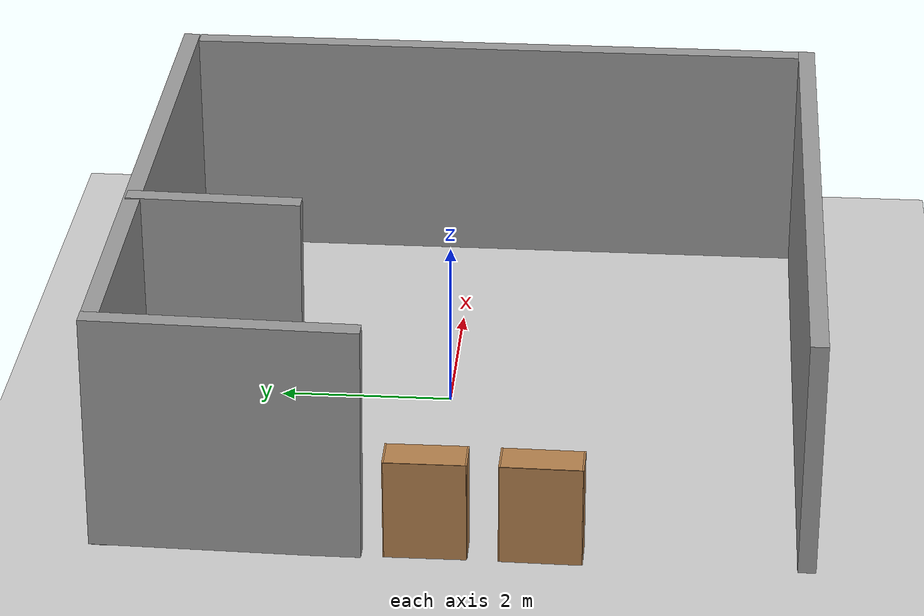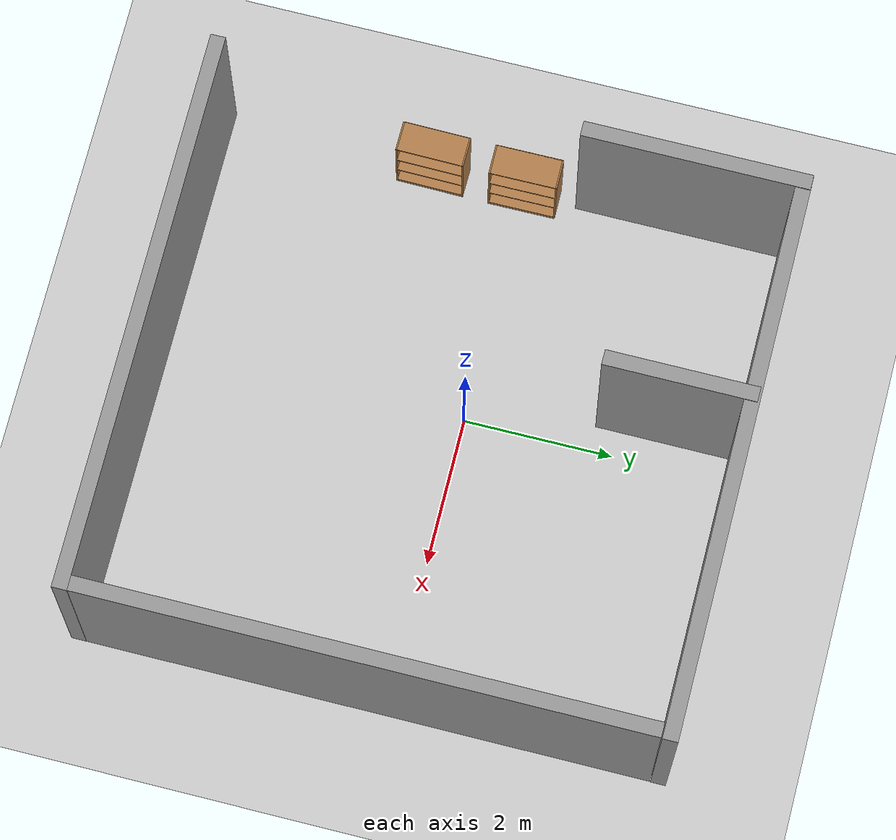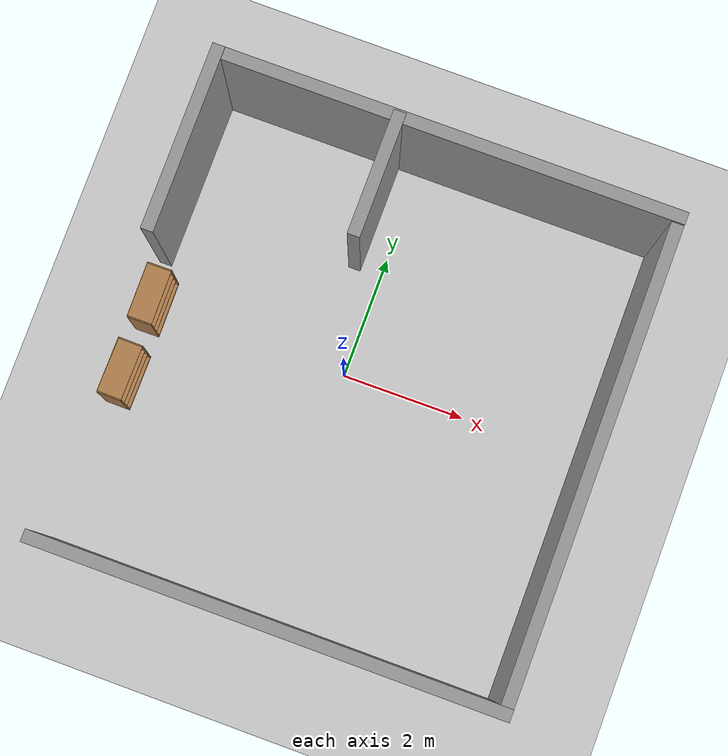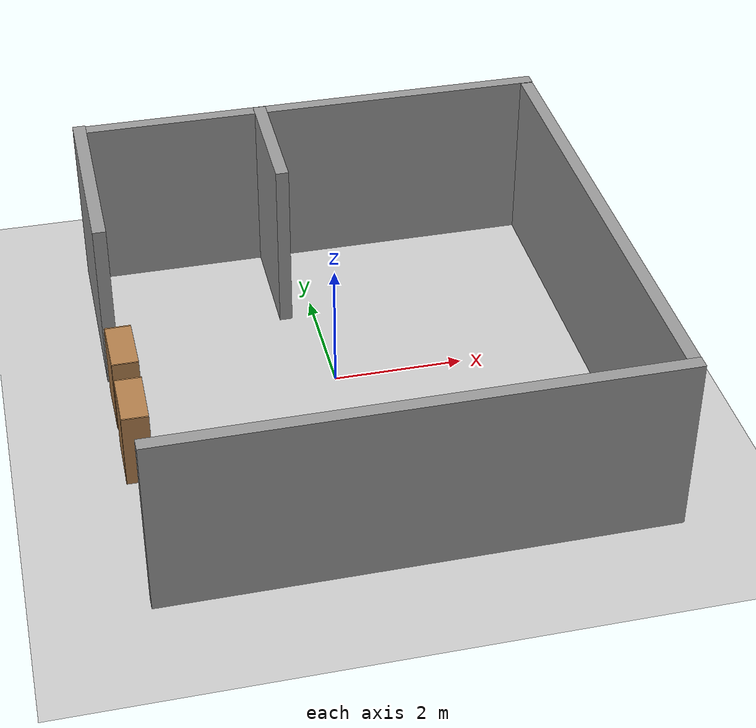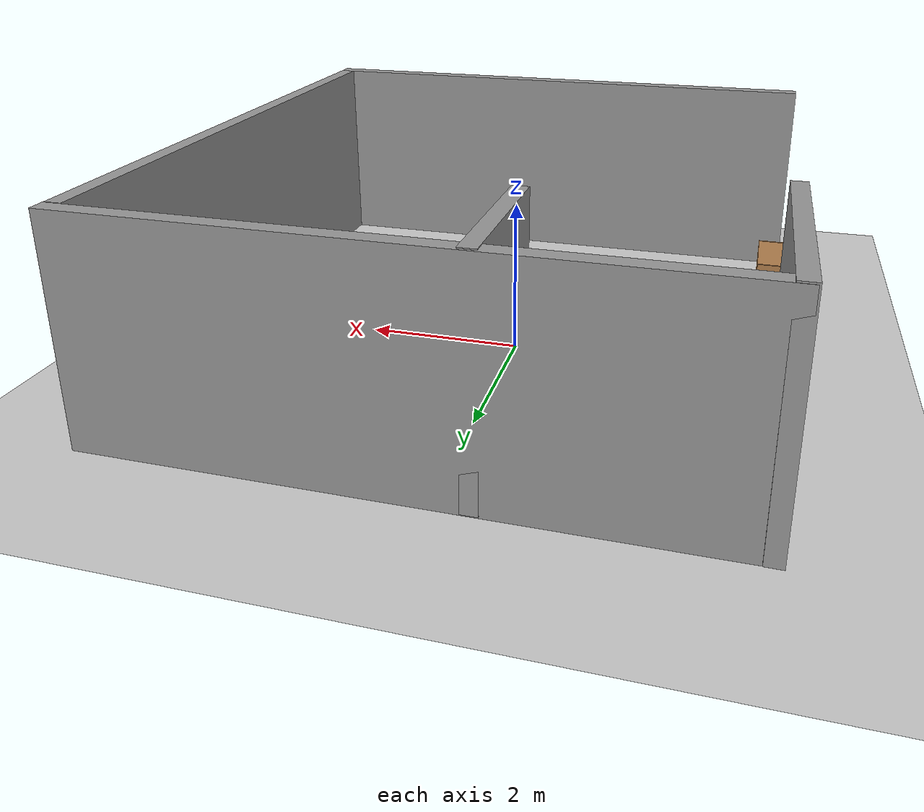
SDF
<sdf version="1.6">
 <world name="default">
  <light name="sun" type="directional">
   <pose>0 0 15 0 -0 0</pose>
   <diffuse>0.8 0.8 0.8 1</diffuse>
   <specular>0.2 0.2 0.2 1</specular>
   <attenuation>
    <range>1000</range>
    <constant>0.9</constant>
    <linear>0.01</linear>
    <quadratic>0.001</quadratic>
   </attenuation>
   <direction>-0.5 0.1 -0.9</direction>
  </light>
  <model name="ground_plane">
   <static>1</static>
   <link name="link">
    <collision name="collision">
     <geometry><plane><normal>0 0 1</normal><size>100 100</size></plane></geometry>
     <surface><friction><ode><mu>100</mu><mu2>50</mu2></ode></friction></surface>
    </collision>
    <visual name="visual">
     <transparency>1</transparency>
     <cast_shadows>0</cast_shadows>
     <geometry><plane><normal>0 0 1</normal><size>100 100</size></plane></geometry>
     <material>
      <script><uri>file://media/materials/scripts/gazebo.material</uri><name>Gazebo/Grey</name></script>
     </material>
    </visual>
   </link>
  </model>
  <gravity>0 0 -9.8</gravity>
  <magnetic_field>6e-06 2.3e-05 -4.2e-05</magnetic_field>
  <atmosphere type="adiabatic"/>
  <physics name="default_physics" default="0" type="ode">
   <max_step_size>0.001</max_step_size>
   <real_time_factor>1</real_time_factor>
   <real_time_update_rate>1000</real_time_update_rate>
  </physics>
  <scene><ambient>0.4 0.4 0.4 1</ambient><background>0.7 0.7 0.7 1</background><shadows>1</shadows></scene>
  <spherical_coordinates>
   <surface_model>EARTH_WGS84</surface_model>
   <latitude_deg>0</latitude_deg>
   <longitude_deg>0</longitude_deg>
   <elevation>0</elevation>
   <heading_deg>0</heading_deg>
  </spherical_coordinates>
  <model name="grey_wall">
   <static>1</static>
   <link name="link">
    <pose>0 0 1.4 0 -0 0</pose>
    <collision name="collision"><geometry><box><size>7.5 0.2 2.8</size></box></geometry></collision>
    <visual name="visual">
     <cast_shadows>0</cast_shadows>
     <geometry><box><size>7.5 0.2 2.8</size></box></geometry>
     <material>
      <script>
       <uri>model://grey_wall/materials/scripts</uri>
       <uri>model://grey_wall/materials/textures</uri>
       <name>vrc/grey_wall</name>
      </script>
     </material>
    </visual>
   </link>
   <pose>0.335627 -4.12565 0 0 -0 0</pose>
  </model>
  <model name="grey_wall_0">
   <static>1</static>
   <link name="link">
    <pose>0 0 1.4 0 -0 0</pose>
    <collision name="collision"><geometry><box><size>7.5 0.2 2.8</size></box></geometry></collision>
    <visual name="visual">
     <cast_shadows>0</cast_shadows>
     <geometry><box><size>7.5 0.2 2.8</size></box></geometry>
     <material>
      <script>
       <uri>model://grey_wall/materials/scripts</uri>
       <uri>model://grey_wall/materials/textures</uri>
       <name>vrc/grey_wall</name>
      </script>
     </material>
    </visual>
   </link>
   <pose>0.337599 3.586 0 0 -0 0</pose>
  </model>
  <model name="grey_wall_1">
   <static>1</static>
   <link name="link">
    <pose>0 0 1.4 0 -0 0</pose>
    <collision name="collision"><geometry><box><size>7.5 0.2 2.8</size></box></geometry></collision>
    <visual name="visual">
     <cast_shadows>0</cast_shadows>
     <geometry><box><size>7.5 0.2 2.8</size></box></geometry>
     <material>
      <script>
       <uri>model://grey_wall/materials/scripts</uri>
       <uri>model://grey_wall/materials/textures</uri>
       <name>vrc/grey_wall</name>
      </script>
     </material>
    </visual>
   </link>
   <pose>3.98261 -0.277309 0 0 -0 1.5708</pose>
  </model>
  <model name="bookshelf">
   <static>1</static>
   <link name="link">
    <inertial><mass>1</mass></inertial>
    <collision name="back">
     <pose>0 0.005 0.6 0 -0 0</pose>
     <geometry><box><size>0.9 0.01 1.2</size></box></geometry>
    </collision>
    <visual name="visual1">
     <pose>0 0.005 0.6 0 -0 0</pose>
     <geometry><box><size>0.9 0.01 1.2</size></box></geometry>
     <material>
      <script><uri>file://media/materials/scripts/gazebo.material</uri><name>Gazebo/Wood</name></script>
     </material>
    </visual>
    <collision name="left_side">
     <pose>0.45 -0.195 0.6 0 -0 0</pose>
     <geometry><box><size>0.02 0.4 1.2</size></box></geometry>
    </collision>
    <visual name="visual2">
     <pose>0.45 -0.195 0.6 0 -0 0</pose>
     <geometry><box><size>0.02 0.4 1.2</size></box></geometry>
     <material>
      <script><uri>file://media/materials/scripts/gazebo.material</uri><name>Gazebo/Wood</name></script>
     </material>
    </visual>
    <collision name="right_side">
     <pose>-0.45 -0.195 0.6 0 -0 0</pose>
     <geometry><box><size>0.02 0.4 1.2</size></box></geometry>
    </collision>
    <visual name="visual3">
     <pose>-0.45 -0.195 0.6 0 -0 0</pose>
     <geometry><box><size>0.02 0.4 1.2</size></box></geometry>
     <material>
      <script><uri>file://media/materials/scripts/gazebo.material</uri><name>Gazebo/Wood</name></script>
     </material>
    </visual>
    <collision name="bottom">
     <pose>0 -0.195 0.03 0 -0 0</pose>
     <geometry><box><size>0.88 0.4 0.06</size></box></geometry>
    </collision>
    <visual name="visual4">
     <pose>0 -0.195 0.03 0 -0 0</pose>
     <geometry><box><size>0.88 0.4 0.06</size></box></geometry>
     <material>
      <script><uri>file://media/materials/scripts/gazebo.material</uri><name>Gazebo/Wood</name></script>
     </material>
    </visual>
    <collision name="top">
     <pose>0 -0.195 1.19 0 -0 0</pose>
     <geometry><box><size>0.88 0.4 0.02</size></box></geometry>
    </collision>
    <visual name="visual5">
     <pose>0 -0.195 1.19 0 -0 0</pose>
     <geometry><box><size>0.88 0.4 0.02</size></box></geometry>
     <material>
      <script><uri>file://media/materials/scripts/gazebo.material</uri><name>Gazebo/Wood</name></script>
     </material>
    </visual>
    <collision name="low_shelf">
     <pose>0 -0.195 0.43 0 -0 0</pose>
     <geometry><box><size>0.88 0.4 0.02</size></box></geometry>
    </collision>
    <visual name="visual6">
     <pose>0 -0.195 0.43 0 -0 0</pose>
     <geometry><box><size>0.88 0.4 0.02</size></box></geometry>
     <material>
      <script><uri>file://media/materials/scripts/gazebo.material</uri><name>Gazebo/Wood</name></script>
     </material>
    </visual>
    <collision name="high_shelf">
     <pose>0 -0.195 0.8 0 -0 0</pose>
     <geometry><box><size>0.88 0.4 0.02</size></box></geometry>
    </collision>
    <visual name="visual7">
     <pose>0 -0.195 0.8 0 -0 0</pose>
     <geometry><box><size>0.88 0.4 0.02</size></box></geometry>
     <material>
      <script><uri>file://media/materials/scripts/gazebo.material</uri><name>Gazebo/Wood</name></script>
     </material>
    </visual>
   </link>
   <pose>-3.41861 0.016996 0 0 -0 1.57682</pose>
  </model>
  <model name="bookshelf_0">
   <static>1</static>
   <link name="link">
    <inertial><mass>1</mass></inertial>
    <collision name="back">
     <pose>0 0.005 0.6 0 -0 0</pose>
     <geometry><box><size>0.9 0.01 1.2</size></box></geometry>
    </collision>
    <visual name="visual1">
     <pose>0 0.005 0.6 0 -0 0</pose>
     <geometry><box><size>0.9 0.01 1.2</size></box></geometry>
     <material>
      <script><uri>file://media/materials/scripts/gazebo.material</uri><name>Gazebo/Wood</name></script>
     </material>
    </visual>
    <collision name="left_side">
     <pose>0.45 -0.195 0.6 0 -0 0</pose>
     <geometry><box><size>0.02 0.4 1.2</size></box></geometry>
    </collision>
    <visual name="visual2">
     <pose>0.45 -0.195 0.6 0 -0 0</pose>
     <geometry><box><size>0.02 0.4 1.2</size></box></geometry>
     <material>
      <script><uri>file://media/materials/scripts/gazebo.material</uri><name>Gazebo/Wood</name></script>
     </material>
    </visual>
    <collision name="right_side">
     <pose>-0.45 -0.195 0.6 0 -0 0</pose>
     <geometry><box><size>0.02 0.4 1.2</size></box></geometry>
    </collision>
    <visual name="visual3">
     <pose>-0.45 -0.195 0.6 0 -0 0</pose>
     <geometry><box><size>0.02 0.4 1.2</size></box></geometry>
     <material>
      <script><uri>file://media/materials/scripts/gazebo.material</uri><name>Gazebo/Wood</name></script>
     </material>
    </visual>
    <collision name="bottom">
     <pose>0 -0.195 0.03 0 -0 0</pose>
     <geometry><box><size>0.88 0.4 0.06</size></box></geometry>
    </collision>
    <visual name="visual4">
     <pose>0 -0.195 0.03 0 -0 0</pose>
     <geometry><box><size>0.88 0.4 0.06</size></box></geometry>
     <material>
      <script><uri>file://media/materials/scripts/gazebo.material</uri><name>Gazebo/Wood</name></script>
     </material>
    </visual>
    <collision name="top">
     <pose>0 -0.195 1.19 0 -0 0</pose>
     <geometry><box><size>0.88 0.4 0.02</size></box></geometry>
    </collision>
    <visual name="visual5">
     <pose>0 -0.195 1.19 0 -0 0</pose>
     <geometry><box><size>0.88 0.4 0.02</size></box></geometry>
     <material>
      <script><uri>file://media/materials/scripts/gazebo.material</uri><name>Gazebo/Wood</name></script>
     </material>
    </visual>
    <collision name="low_shelf">
     <pose>0 -0.195 0.43 0 -0 0</pose>
     <geometry><box><size>0.88 0.4 0.02</size></box></geometry>
    </collision>
    <visual name="visual6">
     <pose>0 -0.195 0.43 0 -0 0</pose>
     <geometry><box><size>0.88 0.4 0.02</size></box></geometry>
     <material>
      <script><uri>file://media/materials/scripts/gazebo.material</uri><name>Gazebo/Wood</name></script>
     </material>
    </visual>
    <collision name="high_shelf">
     <pose>0 -0.195 0.8 0 -0 0</pose>
     <geometry><box><size>0.88 0.4 0.02</size></box></geometry>
    </collision>
    <visual name="visual7">
     <pose>0 -0.195 0.8 0 -0 0</pose>
     <geometry><box><size>0.88 0.4 0.02</size></box></geometry>
     <material>
      <script><uri>file://media/materials/scripts/gazebo.material</uri><name>Gazebo/Wood</name></script>
     </material>
    </visual>
   </link>
   <pose>-3.42707 -1.24038 0 0 -0 1.55768</pose>
  </model>
  <model name="grey_wall_2_0">
   <link name="link">
    <pose>-0 -0 1.4 0 -0 0</pose>
    <inertial>
     <mass>1</mass>
     <inertia><ixx>1</ixx><ixy>0</ixy><ixz>0</ixz><iyy>1</iyy><iyz>0</iyz><izz>1</izz></inertia>
    </inertial>
    <visual name="visual">
     <cast_shadows>0</cast_shadows>
     <geometry><box><size>3 0.2 2.8</size></box></geometry>
     <material>
      <script>
       <uri>model://grey_wall/materials/scripts</uri>
       <uri>model://grey_wall/materials/textures</uri>
       <name>vrc/grey_wall</name>
      </script>
      <ambient>1 1 1 1</ambient>
      <diffuse>1 1 1 1</diffuse>
      <specular>0 0 0 1</specular>
      <emissive>0 0 0 1</emissive>
      <shader type="vertex"><normal_map>__default__</normal_map></shader>
     </material>
    </visual>
    <collision name="collision">
     <geometry><box><size>7.5 0.2 2.8</size></box></geometry>
     <surface>
      <friction>
       <ode><mu>1</mu><mu2>1</mu2><fdir1>0 0 0</fdir1><slip1>0</slip1><slip2>0</slip2></ode>
       <torsional>
        <coefficient>1</coefficient>
        <patch_radius>0</patch_radius>
        <surface_radius>0</surface_radius>
        <use_patch_radius>1</use_patch_radius>
        <ode><slip>0</slip></ode>
       </torsional>
      </friction>
      <bounce><restitution_coefficient>0</restitution_coefficient><threshold>1e+06</threshold></bounce>
      <contact>
       <collide_without_contact>0</collide_without_contact>
       <collide_without_contact_bitmask>1</collide_without_contact_bitmask>
       <collide_bitmask>1</collide_bitmask>
       <ode>
        <soft_cfm>0</soft_cfm>
        <soft_erp>0.2</soft_erp>
        <kp>1e+13</kp>
        <kd>1</kd>
        <max_vel>0.01</max_vel>
        <min_depth>0</min_depth>
       </ode>
       <bullet>
        <split_impulse>1</split_impulse>
        <split_impulse_penetration_threshold>-0.01</split_impulse_penetration_threshold>
        <soft_cfm>0</soft_cfm>
        <soft_erp>0.2</soft_erp>
        <kp>1e+13</kp>
        <kd>1</kd>
       </bullet>
      </contact>
     </surface>
    </collision>
   </link>
   <static>1</static>
   <pose>-3.33677 2.21687 -3e-06 -5e-05 0.012372 -1.57485</pose>
  </model>
  <model name="grey_wall_2_0_clone_0">
   <link name="link">
    <pose>-0 -0 1.4 0 -0 0</pose>
    <inertial>
     <mass>1</mass>
     <inertia><ixx>1</ixx><ixy>0</ixy><ixz>0</ixz><iyy>1</iyy><iyz>0</iyz><izz>1</izz></inertia>
    </inertial>
    <visual name="visual">
     <cast_shadows>0</cast_shadows>
     <geometry><box><size>2 0.2 2.8</size></box></geometry>
     <material>
      <script>
       <uri>model://grey_wall/materials/scripts</uri>
       <uri>model://grey_wall/materials/textures</uri>
       <name>vrc/grey_wall</name>
      </script>
      <ambient>1 1 1 1</ambient>
      <diffuse>1 1 1 1</diffuse>
      <specular>0 0 0 1</specular>
      <emissive>0 0 0 1</emissive>
      <shader type="vertex"><normal_map>__default__</normal_map></shader>
     </material>
    </visual>
    <collision name="collision">
     <geometry><box><size>7.5 0.2 2.8</size></box></geometry>
     <surface>
      <friction>
       <ode><mu>1</mu><mu2>1</mu2><fdir1>0 0 0</fdir1><slip1>0</slip1><slip2>0</slip2></ode>
       <torsional>
        <coefficient>1</coefficient>
        <patch_radius>0</patch_radius>
        <surface_radius>0</surface_radius>
        <use_patch_radius>1</use_patch_radius>
        <ode><slip>0</slip></ode>
       </torsional>
      </friction>
      <bounce><restitution_coefficient>0</restitution_coefficient><threshold>1e+06</threshold></bounce>
      <contact>
       <collide_without_contact>0</collide_without_contact>
       <collide_without_contact_bitmask>1</collide_without_contact_bitmask>
       <collide_bitmask>1</collide_bitmask>
       <ode>
        <soft_cfm>0</soft_cfm>
        <soft_erp>0.2</soft_erp>
        <kp>1e+13</kp>
        <kd>1</kd>
        <max_vel>0.01</max_vel>
        <min_depth>0</min_depth>
       </ode>
       <bullet>
        <split_impulse>1</split_impulse>
        <split_impulse_penetration_threshold>-0.01</split_impulse_penetration_threshold>
        <soft_cfm>0</soft_cfm>
        <soft_erp>0.2</soft_erp>
        <kp>1e+13</kp>
        <kd>1</kd>
       </bullet>
      </contact>
     </surface>
    </collision>
   </link>
   <static>1</static>
   <pose>-0.447663 2.69213 -3e-06 -5e-05 0.012372 -1.57485</pose>
  </model>
 </world>
</sdf>
